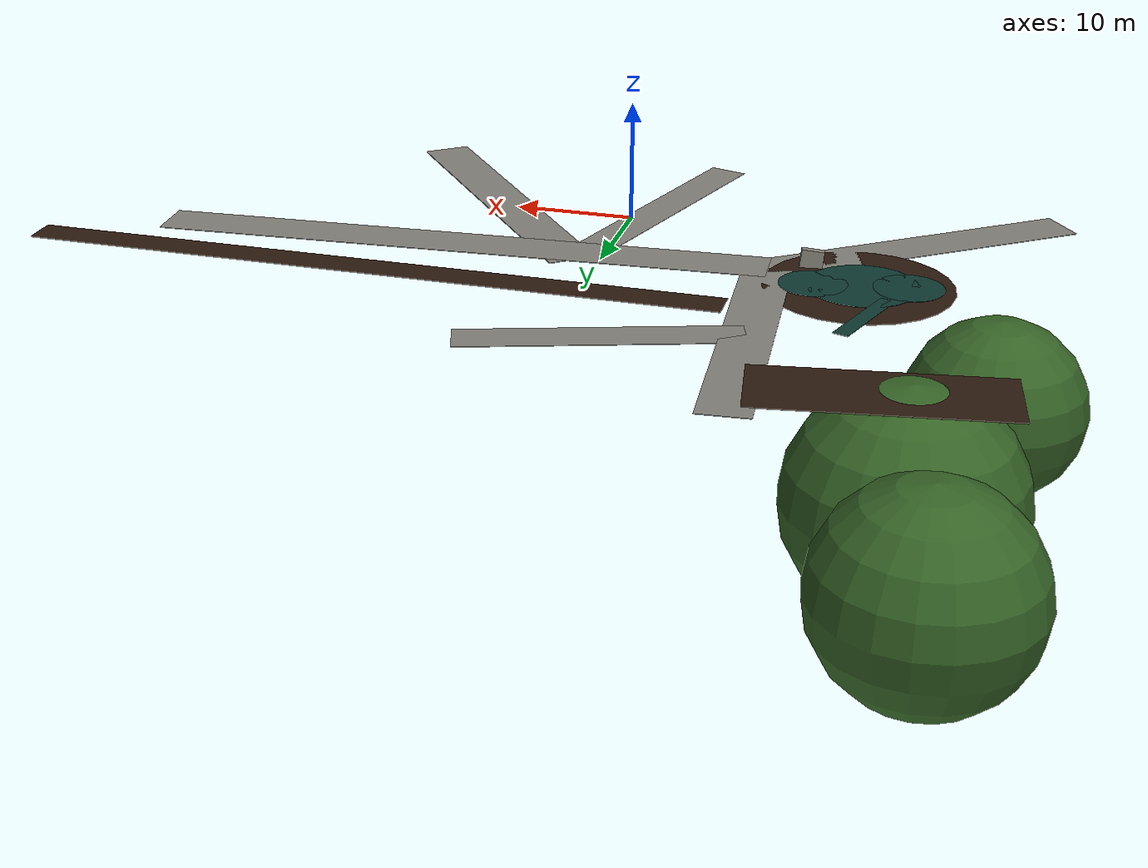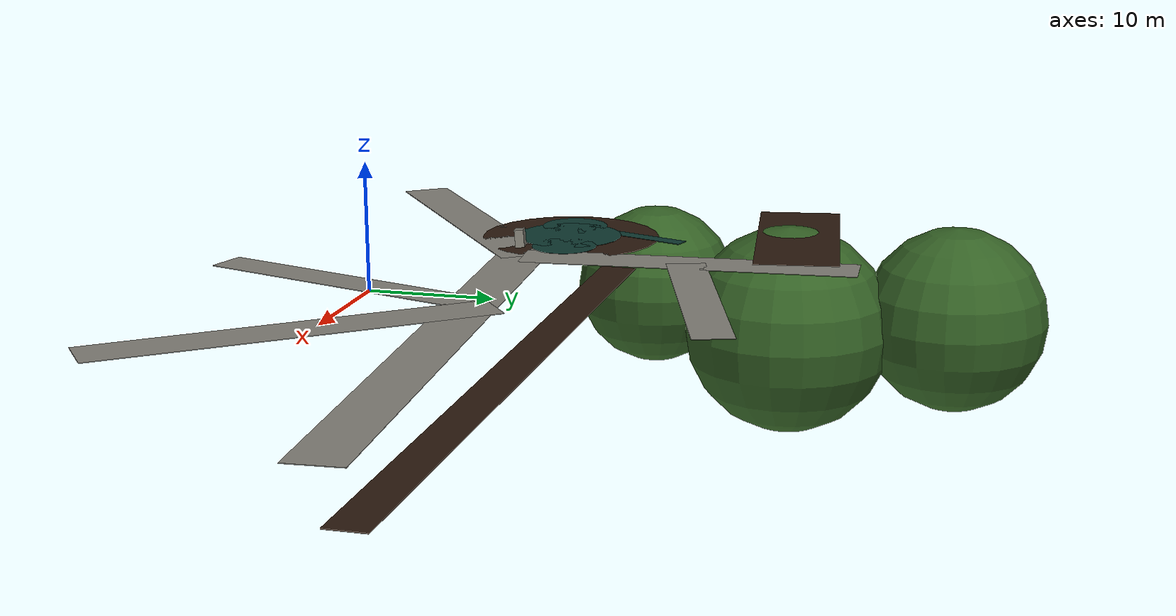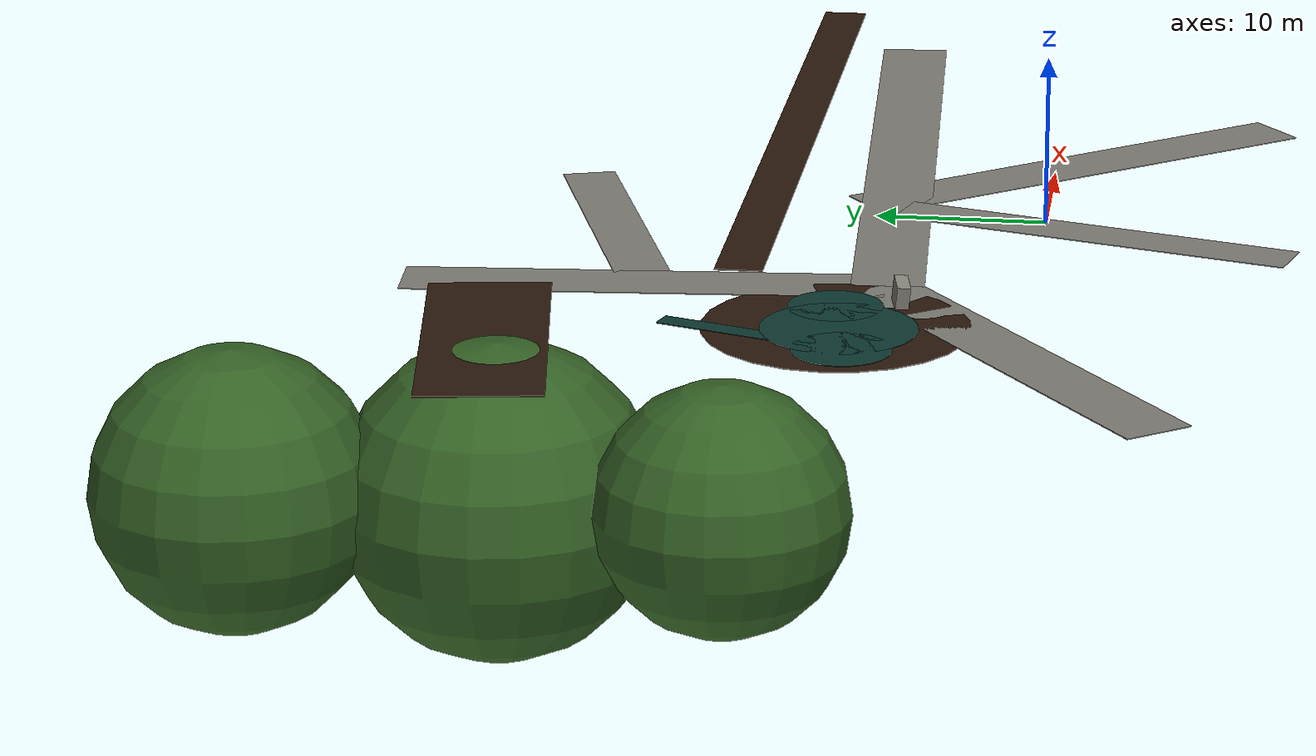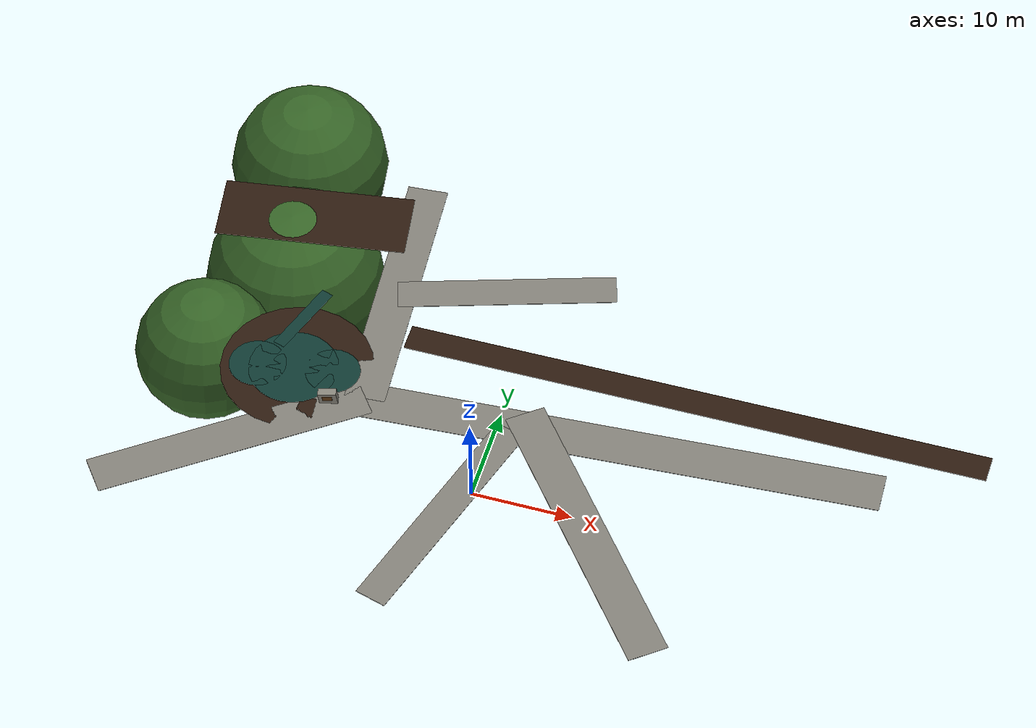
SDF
<?xml version="1.0"?>
<sdf version="1.9">
  <!--
    Coordinates are local ENU metres. Path centerlines follow the geographic
    positions visible in the supplied photo spheres.
  -->
  <model name="surf_throop_garden">
    <static>true</static>
    <link name="landscape">
      <!-- Connected concrete path segments approximate the gently curving network. -->
      <collision name="north_axis_collision"><pose>-14.25 21.9 0.025 0 0 -1.497</pose><geometry><box><size>27.4 4.0 0.05</size></box></geometry></collision>
      <visual name="north_axis_visual"><pose>-14.25 21.9 0.025 0 0 -1.497</pose><geometry><box><size>27.4 4.0 0.05</size></box></geometry><material><ambient>0.42 0.41 0.39 1</ambient><diffuse>0.50 0.49 0.46 1</diffuse></material></visual>

      <collision name="central_walk_collision"><pose>12.1 9.6 0.025 0 0 0.060</pose><geometry><box><size>50.8 4.2 0.05</size></box></geometry></collision>
      <visual name="central_walk_visual"><pose>12.1 9.6 0.025 0 0 0.060</pose><geometry><box><size>50.8 4.2 0.05</size></box></geometry><material><ambient>0.42 0.41 0.39 1</ambient><diffuse>0.50 0.49 0.46 1</diffuse></material></visual>

      <collision name="southeast_walk_collision"><pose>11.65 -1.25 0.025 0 0 -0.901</pose><geometry><box><size>30.8 4.0 0.05</size></box></geometry></collision>
      <visual name="southeast_walk_visual"><pose>11.65 -1.25 0.025 0 0 -0.901</pose><geometry><box><size>30.8 4.0 0.05</size></box></geometry><material><ambient>0.42 0.41 0.39 1</ambient><diffuse>0.50 0.49 0.46 1</diffuse></material></visual>

      <collision name="west_walk_collision"><pose>-24.2 0.15 0.025 0 0 -2.500</pose><geometry><box><size>27.5 4.0 0.05</size></box></geometry></collision>
      <visual name="west_walk_visual"><pose>-24.2 0.15 0.025 0 0 -2.500</pose><geometry><box><size>27.5 4.0 0.05</size></box></geometry><material><ambient>0.42 0.41 0.39 1</ambient><diffuse>0.50 0.49 0.46 1</diffuse></material></visual>

      <collision name="northeast_walk_collision"><pose>-3.9 25.0 0.025 0 0 0.315</pose><geometry><box><size>21.5 3.2 0.05</size></box></geometry></collision>
      <visual name="northeast_walk_visual"><pose>-3.9 25.0 0.025 0 0 0.315</pose><geometry><box><size>21.5 3.2 0.05</size></box></geometry><material><ambient>0.42 0.41 0.39 1</ambient><diffuse>0.50 0.49 0.46 1</diffuse></material></visual>

      <collision name="south_connector_collision"><pose>-2.0 -3.0 0.025 0 0 1.280</pose><geometry><box><size>24 3.2 0.05</size></box></geometry></collision>
      <visual name="south_connector_visual"><pose>-2.0 -3.0 0.025 0 0 1.280</pose><geometry><box><size>24 3.2 0.05</size></box></geometry><material><ambient>0.42 0.41 0.39 1</ambient><diffuse>0.50 0.49 0.46 1</diffuse></material></visual>

      <!-- Subtle raised garden ground, kept away from robot travel lanes. -->
      <collision name="mound_northwest_collision"><pose>-27 28 -8.55 0 0 0</pose><geometry><sphere><radius>9.0</radius></sphere></geometry></collision>
      <visual name="mound_northwest_visual"><pose>-27 28 -8.55 0 0 0</pose><geometry><sphere><radius>9.0</radius></sphere></geometry><material><ambient>0.17 0.30 0.12 1</ambient><diffuse>0.21 0.39 0.15 1</diffuse></material></visual>
      <collision name="mound_north_collision"><pose>-30 42 -7.55 0 0 0</pose><geometry><sphere><radius>8.0</radius></sphere></geometry></collision>
      <visual name="mound_north_visual"><pose>-30 42 -7.55 0 0 0</pose><geometry><sphere><radius>8.0</radius></sphere></geometry><material><ambient>0.17 0.30 0.12 1</ambient><diffuse>0.21 0.39 0.15 1</diffuse></material></visual>
      <collision name="mound_west_collision"><pose>-32 15 -6.62 0 0 0</pose><geometry><sphere><radius>7.0</radius></sphere></geometry></collision>
      <visual name="mound_west_visual"><pose>-32 15 -6.62 0 0 0</pose><geometry><sphere><radius>7.0</radius></sphere></geometry><material><ambient>0.17 0.30 0.12 1</ambient><diffuse>0.21 0.39 0.15 1</diffuse></material></visual>

      <!-- Irregular ornamental pond and the short rock-lined feeder stream. -->
      <visual name="pond_water_main">
        <pose>-21.0 10.0 0.055 0 0 0</pose>
        <geometry><cylinder><radius>4.4</radius><length>0.06</length></cylinder></geometry>
        <material><ambient>0.035 0.12 0.11 0.92</ambient><diffuse>0.055 0.22 0.19 0.92</diffuse><specular>0.45 0.48 0.46 1</specular></material>
        <transparency>0.10</transparency>
      </visual>
      <visual name="pond_water_east">
        <pose>-17.2 10.6 0.055 0 0 0</pose>
        <geometry><cylinder><radius>2.7</radius><length>0.06</length></cylinder></geometry>
        <material><ambient>0.035 0.12 0.11 0.92</ambient><diffuse>0.055 0.22 0.19 0.92</diffuse><specular>0.45 0.48 0.46 1</specular></material><transparency>0.10</transparency>
      </visual>
      <visual name="pond_water_west">
        <pose>-24.5 9.5 0.055 0 0 0</pose>
        <geometry><cylinder><radius>2.8</radius><length>0.06</length></cylinder></geometry>
        <material><ambient>0.035 0.12 0.11 0.92</ambient><diffuse>0.055 0.22 0.19 0.92</diffuse><specular>0.45 0.48 0.46 1</specular></material><transparency>0.10</transparency>
      </visual>
      <visual name="feeder_stream">
        <pose>-22.0 16.1 0.055 0 0 1.25</pose>
        <geometry><box><size>8.0 1.25 0.06</size></box></geometry>
        <material><ambient>0.035 0.12 0.11 0.92</ambient><diffuse>0.055 0.22 0.19 0.92</diffuse><specular>0.45 0.48 0.46 1</specular></material><transparency>0.10</transparency>
      </visual>

      <!-- Dark mulched beds create the layered low planting visible at eye level. -->
      <visual name="pond_bed"><pose>-20.7 10.2 0.025 0 0 0</pose><geometry><cylinder><radius>7.5</radius><length>0.05</length></cylinder></geometry><material><ambient>0.12 0.075 0.04 1</ambient><diffuse>0.17 0.10 0.055 1</diffuse></material></visual>
      <visual name="north_bed"><pose>-25 29 0.035 0 0 0.15</pose><geometry><box><size>19 7 0.07</size></box></geometry><material><ambient>0.12 0.075 0.04 1</ambient><diffuse>0.17 0.10 0.055 1</diffuse></material></visual>
      <visual name="building_bed"><pose>17.5 16.8 0.035 0 0 0</pose><geometry><box><size>58 2.8 0.07</size></box></geometry><material><ambient>0.12 0.075 0.04 1</ambient><diffuse>0.17 0.10 0.055 1</diffuse></material></visual>

      <!-- Stone marker near the southwest pond edge. -->
      <collision name="memorial_stone_collision"><pose>-16.5 7.0 0.72 0.08 -0.12 0.2</pose><geometry><box><size>1.8 0.75 1.45</size></box></geometry></collision>
      <visual name="memorial_stone_visual"><pose>-16.5 7.0 0.72 0.08 -0.12 0.2</pose><geometry><box><size>1.8 0.75 1.45</size></box></geometry><material><ambient>0.43 0.42 0.39 1</ambient><diffuse>0.53 0.52 0.48 1</diffuse></material></visual>
      <visual name="memorial_plaque"><pose>-16.45 6.59 0.78 0.08 -0.12 0.2</pose><geometry><box><size>0.95 0.04 0.62</size></box></geometry><material><ambient>0.20 0.12 0.045 1</ambient><diffuse>0.38 0.23 0.08 1</diffuse><specular>0.35 0.28 0.12 1</specular></material></visual>
    </link>
  </model>
</sdf>
